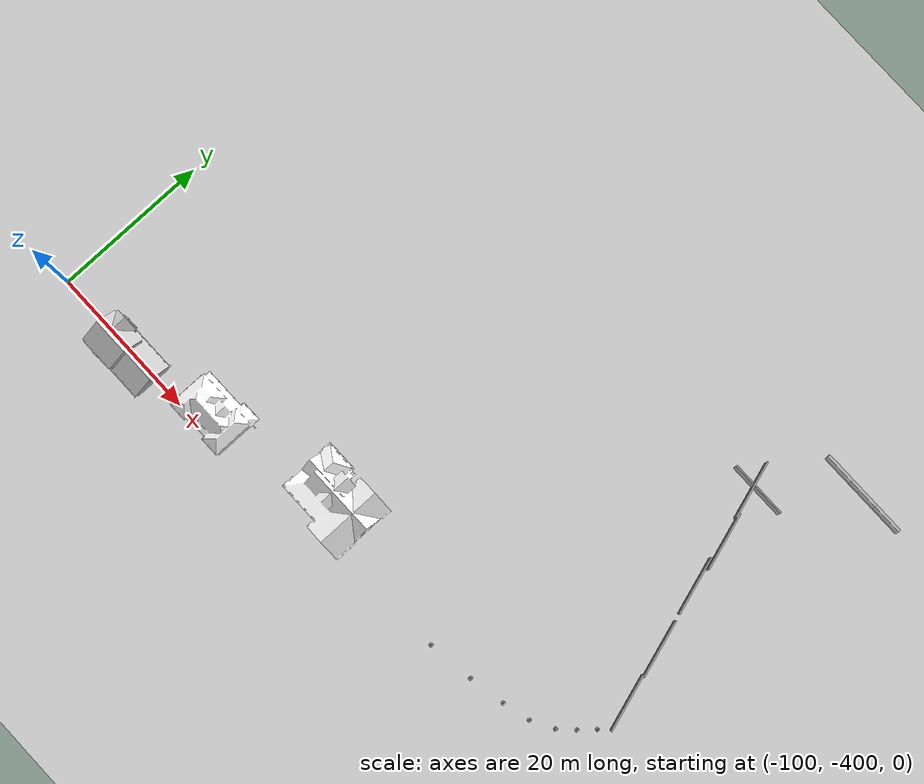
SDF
<sdf version="1.6">
 <world name="default">
  <model name="jersey_barrier_clone">
   <static>1</static>
   <link name="link">
    <visual name="visual">
     <geometry><mesh><uri>model://jersey_barrier/meshes/jersey_barrier.dae</uri></mesh></geometry>
    </visual>
    <collision name="upright">
     <pose>0 0 0.5715 0 -0 0</pose>
     <geometry><box><size>4.06542 0.3063 1.143</size></box></geometry>
    </collision>
    <collision name="base">
     <pose>0 0 0.032258 0 -0 0</pose>
     <geometry><box><size>4.06542 0.8107 0.064516</size></box></geometry>
    </collision>
    <collision name="base2">
     <pose>0 0 0.1 0 -0 0</pose>
     <geometry><box><size>4.06542 0.65 0.1</size></box></geometry>
    </collision>
    <collision name="base3">
     <pose>0 0 0.2 0 -0 0</pose>
     <geometry><box><size>4.06542 0.5 0.1</size></box></geometry>
    </collision>
    <collision name="left-angle">
     <pose>0 -0.224 0.2401 0.9 -0 0</pose>
     <geometry><box><size>4.06542 0.5 0.064516</size></box></geometry>
    </collision>
    <collision name="right-angle">
     <pose>0 0.224 0.2401 -0.9 0 0</pose>
     <geometry><box><size>4.06542 0.5 0.064516</size></box></geometry>
    </collision>
   </link>
   <pose>-22 -348 0 0 -0 0</pose>
  </model>
  <model name="jersey_barrier_clone_clone">
   <static>1</static>
   <link name="link">
    <visual name="visual">
     <geometry><mesh><uri>model://jersey_barrier/meshes/jersey_barrier.dae</uri></mesh></geometry>
    </visual>
    <collision name="upright">
     <pose>0 0 0.5715 0 -0 0</pose>
     <geometry><box><size>4.06542 0.3063 1.143</size></box></geometry>
    </collision>
    <collision name="base">
     <pose>0 0 0.032258 0 -0 0</pose>
     <geometry><box><size>4.06542 0.8107 0.064516</size></box></geometry>
    </collision>
    <collision name="base2">
     <pose>0 0 0.1 0 -0 0</pose>
     <geometry><box><size>4.06542 0.65 0.1</size></box></geometry>
    </collision>
    <collision name="base3">
     <pose>0 0 0.2 0 -0 0</pose>
     <geometry><box><size>4.06542 0.5 0.1</size></box></geometry>
    </collision>
    <collision name="left-angle">
     <pose>0 -0.224 0.2401 0.9 -0 0</pose>
     <geometry><box><size>4.06542 0.5 0.064516</size></box></geometry>
    </collision>
    <collision name="right-angle">
     <pose>0 0.224 0.2401 -0.9 0 0</pose>
     <geometry><box><size>4.06542 0.5 0.064516</size></box></geometry>
    </collision>
   </link>
   <pose>-18 -348 0 0 -0 0</pose>
  </model>
  <model name="jersey_barrier_clone_clone_clone">
   <static>1</static>
   <link name="link">
    <visual name="visual">
     <geometry><mesh><uri>model://jersey_barrier/meshes/jersey_barrier.dae</uri></mesh></geometry>
    </visual>
    <collision name="upright">
     <pose>0 0 0.5715 0 -0 0</pose>
     <geometry><box><size>4.06542 0.3063 1.143</size></box></geometry>
    </collision>
    <collision name="base">
     <pose>0 0 0.032258 0 -0 0</pose>
     <geometry><box><size>4.06542 0.8107 0.064516</size></box></geometry>
    </collision>
    <collision name="base2">
     <pose>0 0 0.1 0 -0 0</pose>
     <geometry><box><size>4.06542 0.65 0.1</size></box></geometry>
    </collision>
    <collision name="base3">
     <pose>0 0 0.2 0 -0 0</pose>
     <geometry><box><size>4.06542 0.5 0.1</size></box></geometry>
    </collision>
    <collision name="left-angle">
     <pose>0 -0.224 0.2401 0.9 -0 0</pose>
     <geometry><box><size>4.06542 0.5 0.064516</size></box></geometry>
    </collision>
    <collision name="right-angle">
     <pose>0 0.224 0.2401 -0.9 0 0</pose>
     <geometry><box><size>4.06542 0.5 0.064516</size></box></geometry>
    </collision>
   </link>
   <pose>-14 -348 0 0 -0 0</pose>
  </model>
  <model name="grey_wall">
   <static>1</static>
   <link name="link">
    <pose>0 0 1.4 0 -0 0</pose>
    <collision name="collision"><geometry><box><size>7.5 0.2 2.8</size></box></geometry></collision>
    <visual name="visual">
     <cast_shadows>0</cast_shadows>
     <geometry><box><size>7.5 0.2 2.8</size></box></geometry>
     <material>
      <script>
       <uri>model://grey_wall/materials/scripts</uri>
       <uri>model://grey_wall/materials/textures</uri>
       <name>vrc/grey_wall</name>
      </script>
     </material>
    </visual>
   </link>
   <pose>-26.7501 -356.978 0 0 -0 0</pose>
  </model>
  <model name="grey_wall_clone">
   <static>1</static>
   <link name="link">
    <pose>0 0 1.4 0 -0 0</pose>
    <collision name="collision"><geometry><box><size>7.5 0.2 2.8</size></box></geometry></collision>
    <visual name="visual">
     <cast_shadows>0</cast_shadows>
     <geometry><box><size>7.5 0.2 2.8</size></box></geometry>
     <material>
      <script>
       <uri>model://grey_wall/materials/scripts</uri>
       <uri>model://grey_wall/materials/textures</uri>
       <name>vrc/grey_wall</name>
      </script>
     </material>
    </visual>
   </link>
   <pose>-27.2286 -357.564 0 0 -0 1.87601</pose>
  </model>
  <model name="grey_wall_clone_0">
   <static>1</static>
   <link name="link">
    <pose>0 0 1.4 0 -0 0</pose>
    <collision name="collision"><geometry><box><size>7.5 0.2 2.8</size></box></geometry></collision>
    <visual name="visual">
     <cast_shadows>0</cast_shadows>
     <geometry><box><size>7.5 0.2 2.8</size></box></geometry>
     <material>
      <script>
       <uri>model://grey_wall/materials/scripts</uri>
       <uri>model://grey_wall/materials/textures</uri>
       <name>vrc/grey_wall</name>
      </script>
     </material>
    </visual>
   </link>
   <pose>-25 -364 0 0 -0 1.87601</pose>
  </model>
  <model name="grey_wall_clone_0_clone">
   <static>1</static>
   <link name="link">
    <pose>0 0 1.4 0 -0 0</pose>
    <collision name="collision"><geometry><box><size>7.5 0.2 2.8</size></box></geometry></collision>
    <visual name="visual">
     <cast_shadows>0</cast_shadows>
     <geometry><box><size>7.5 0.2 2.8</size></box></geometry>
     <material>
      <script>
       <uri>model://grey_wall/materials/scripts</uri>
       <uri>model://grey_wall/materials/textures</uri>
       <name>vrc/grey_wall</name>
      </script>
     </material>
    </visual>
   </link>
   <pose>-23.5425 -370 0 0 -0 1.87601</pose>
  </model>
  <model name="grey_wall_clone_0_clone_clone">
   <static>1</static>
   <link name="link">
    <pose>0 0 1.4 0 -0 0</pose>
    <collision name="collision"><geometry><box><size>7.5 0.2 2.8</size></box></geometry></collision>
    <visual name="visual">
     <cast_shadows>0</cast_shadows>
     <geometry><box><size>7.5 0.2 2.8</size></box></geometry>
     <material>
      <script>
       <uri>model://grey_wall/materials/scripts</uri>
       <uri>model://grey_wall/materials/textures</uri>
       <name>vrc/grey_wall</name>
      </script>
     </material>
    </visual>
   </link>
   <pose>-21 -378 0 0 -0 1.87601</pose>
  </model>
  <model name="grey_wall_clone_0_clone_clone_clone">
   <static>1</static>
   <link name="link">
    <pose>0 0 1.4 0 -0 0</pose>
    <collision name="collision"><geometry><box><size>7.5 0.2 2.8</size></box></geometry></collision>
    <visual name="visual">
     <cast_shadows>0</cast_shadows>
     <geometry><box><size>7.5 0.2 2.8</size></box></geometry>
     <material>
      <script>
       <uri>model://grey_wall/materials/scripts</uri>
       <uri>model://grey_wall/materials/textures</uri>
       <name>vrc/grey_wall</name>
      </script>
     </material>
    </visual>
   </link>
   <pose>-19 -385 0 0 -0 1.87601</pose>
  </model>
  <model name="House 1">
   <static>1</static>
   <link name="link">
    <collision name="collision">
     <geometry><mesh><uri>model://house_1/meshes/house_1.dae</uri></mesh></geometry>
    </collision>
    <visual name="visual">
     <geometry><mesh><uri>model://house_1/meshes/house_1.dae</uri></mesh></geometry>
     <material>
      <script>
       <uri>model://house_1/materials/scripts</uri>
       <uri>model://house_1/materials/textures</uri>
       <name>House_1/Diffuse</name>
      </script>
      <shader type="normal_map_object_space"><normal_map>House_1_Normal.png</normal_map></shader>
     </material>
    </visual>
   </link>
   <pose>-59 -394 0 0 -0 0</pose>
  </model>
  <model name="House 2">
   <static>1</static>
   <link name="link">
    <collision name="collision">
     <geometry><mesh><uri>model://house_2/meshes/house_2.dae</uri></mesh></geometry>
    </collision>
    <visual name="visual">
     <geometry><mesh><uri>model://house_2/meshes/house_2.dae</uri></mesh></geometry>
     <material>
      <script>
       <uri>model://house_2/materials/scripts</uri>
       <uri>model://house_2/materials/textures</uri>
       <uri>model://house_1/materials/textures</uri>
       <name>House_2/Diffuse</name>
      </script>
      <shader type="normal_map_object_space">
       <normal_map>model://house_1/materials/textures/House_1_Normal.png</normal_map>
      </shader>
     </material>
    </visual>
   </link>
   <pose>-77 -398 0 0 -0 0</pose>
  </model>
  <model name="House 3">
   <static>1</static>
   <link name="link">
    <collision name="collision">
     <geometry><mesh><uri>model://house_3/meshes/house_3.dae</uri></mesh></geometry>
    </collision>
    <visual name="visual">
     <geometry><mesh><uri>model://house_3/meshes/house_3.dae</uri></mesh></geometry>
     <material>
      <script>
       <uri>model://house_3/materials/scripts</uri>
       <uri>model://house_3/materials/textures</uri>
       <uri>model://house_1/materials/textures</uri>
       <name>House_3/Diffuse</name>
      </script>
      <shader type="normal_map_object_space">
       <normal_map>model://house_1/materials/textures/House_1_Normal.png</normal_map>
      </shader>
     </material>
    </visual>
   </link>
   <pose>-88 -400.484 0 0 -0 0</pose>
  </model>
  <model name="Construction Cone">
   <link name="link">
    <collision name="collision">
     <geometry>
      <mesh><scale>10 10 10</scale><uri>model://construction_cone/meshes/construction_cone.dae</uri></mesh>
     </geometry>
    </collision>
    <visual name="visual">
     <geometry>
      <mesh><scale>10 10 10</scale><uri>model://construction_cone/meshes/construction_cone.dae</uri></mesh>
     </geometry>
    </visual>
    <inertial>
     <inertia><ixx>1</ixx><ixy>0</ixy><ixz>0</ixz><iyy>1</iyy><iyz>0</iyz><izz>1</izz></inertia>
     <mass>1</mass>
    </inertial>
   </link>
   <pose>-19 -389.557 -0 0 -1e-06 0</pose>
  </model>
  <model name="Construction Cone_clone">
   <link name="link">
    <collision name="collision">
     <geometry>
      <mesh><scale>10 10 10</scale><uri>model://construction_cone/meshes/construction_cone.dae</uri></mesh>
     </geometry>
    </collision>
    <visual name="visual">
     <geometry>
      <mesh><scale>10 10 10</scale><uri>model://construction_cone/meshes/construction_cone.dae</uri></mesh>
     </geometry>
    </visual>
    <inertial>
     <inertia><ixx>1</ixx><ixy>0</ixy><ixz>0</ixz><iyy>1</iyy><iyz>0</iyz><izz>1</izz></inertia>
     <mass>1</mass>
    </inertial>
   </link>
   <pose>-20.5705 -391.331 -0 0 -0 0</pose>
  </model>
  <model name="Construction Cone_clone_clone">
   <link name="link">
    <collision name="collision">
     <geometry>
      <mesh><scale>10 10 10</scale><uri>model://construction_cone/meshes/construction_cone.dae</uri></mesh>
     </geometry>
    </collision>
    <visual name="visual">
     <geometry>
      <mesh><scale>10 10 10</scale><uri>model://construction_cone/meshes/construction_cone.dae</uri></mesh>
     </geometry>
    </visual>
    <inertial>
     <inertia><ixx>1</ixx><ixy>0</ixy><ixz>0</ixz><iyy>1</iyy><iyz>0</iyz><izz>1</izz></inertia>
     <mass>1</mass>
    </inertial>
   </link>
   <pose>-22.3249 -393.096 0 -0 -0 -0</pose>
  </model>
  <model name="Construction Cone_clone_clone_clone">
   <link name="link">
    <collision name="collision">
     <geometry>
      <mesh><scale>10 10 10</scale><uri>model://construction_cone/meshes/construction_cone.dae</uri></mesh>
     </geometry>
    </collision>
    <visual name="visual">
     <geometry>
      <mesh><scale>10 10 10</scale><uri>model://construction_cone/meshes/construction_cone.dae</uri></mesh>
     </geometry>
    </visual>
    <inertial>
     <inertia><ixx>1</ixx><ixy>0</ixy><ixz>0</ixz><iyy>1</iyy><iyz>0</iyz><izz>1</izz></inertia>
     <mass>1</mass>
    </inertial>
   </link>
   <pose>-25.1263 -394.655 0 -0 -0 -0</pose>
  </model>
  <model name="Construction Cone_clone_clone_clone_clone">
   <link name="link">
    <collision name="collision">
     <geometry>
      <mesh><scale>10 10 10</scale><uri>model://construction_cone/meshes/construction_cone.dae</uri></mesh>
     </geometry>
    </collision>
    <visual name="visual">
     <geometry>
      <mesh><scale>10 10 10</scale><uri>model://construction_cone/meshes/construction_cone.dae</uri></mesh>
     </geometry>
    </visual>
    <inertial>
     <inertia><ixx>1</ixx><ixy>0</ixy><ixz>0</ixz><iyy>1</iyy><iyz>0</iyz><izz>1</izz></inertia>
     <mass>1</mass>
    </inertial>
   </link>
   <pose>-28.6583 -395.535 0 -0 -0 -0</pose>
  </model>
  <model name="Construction Cone_clone_clone_clone_clone_clone">
   <link name="link">
    <collision name="collision">
     <geometry>
      <mesh><scale>10 10 10</scale><uri>model://construction_cone/meshes/construction_cone.dae</uri></mesh>
     </geometry>
    </collision>
    <visual name="visual">
     <geometry>
      <mesh><scale>10 10 10</scale><uri>model://construction_cone/meshes/construction_cone.dae</uri></mesh>
     </geometry>
    </visual>
    <inertial>
     <inertia><ixx>1</ixx><ixy>0</ixy><ixz>0</ixz><iyy>1</iyy><iyz>0</iyz><izz>1</izz></inertia>
     <mass>1</mass>
    </inertial>
   </link>
   <pose>-33.3133 -396.401 -0 0 -0 0</pose>
  </model>
  <model name="Construction Cone_clone_clone_clone_clone_clone_clone">
   <link name="link">
    <collision name="collision">
     <geometry>
      <mesh><scale>10 10 10</scale><uri>model://construction_cone/meshes/construction_cone.dae</uri></mesh>
     </geometry>
    </collision>
    <visual name="visual">
     <geometry>
      <mesh><scale>10 10 10</scale><uri>model://construction_cone/meshes/construction_cone.dae</uri></mesh>
     </geometry>
    </visual>
    <inertial>
     <inertia><ixx>1</ixx><ixy>0</ixy><ixz>0</ixz><iyy>1</iyy><iyz>0</iyz><izz>1</izz></inertia>
     <mass>1</mass>
    </inertial>
   </link>
   <pose>-39.2634 -397.191 -1e-05 -0 -0 -0</pose>
  </model>
  <model name="ground_plane">
   <static>1</static>
   <link name="link">
    <collision name="collision">
     <geometry><plane><normal>0 0 1</normal><size>100 100</size></plane></geometry>
     <surface>
      <contact><collide_bitmask>65535</collide_bitmask></contact>
      <friction><ode><mu>100</mu><mu2>50</mu2></ode></friction>
     </surface>
    </collision>
    <visual name="visual">
     <cast_shadows>0</cast_shadows>
     <geometry><plane><normal>0 0 1</normal><size>100 100</size></plane></geometry>
     <material>
      <script><uri>file://media/materials/scripts/gazebo.material</uri><name>Gazebo/Grey</name></script>
     </material>
    </visual>
   </link>
   <pose>-12.5153 -61.1689 0 0 -0 0</pose>
  </model>
 </world>
</sdf>
